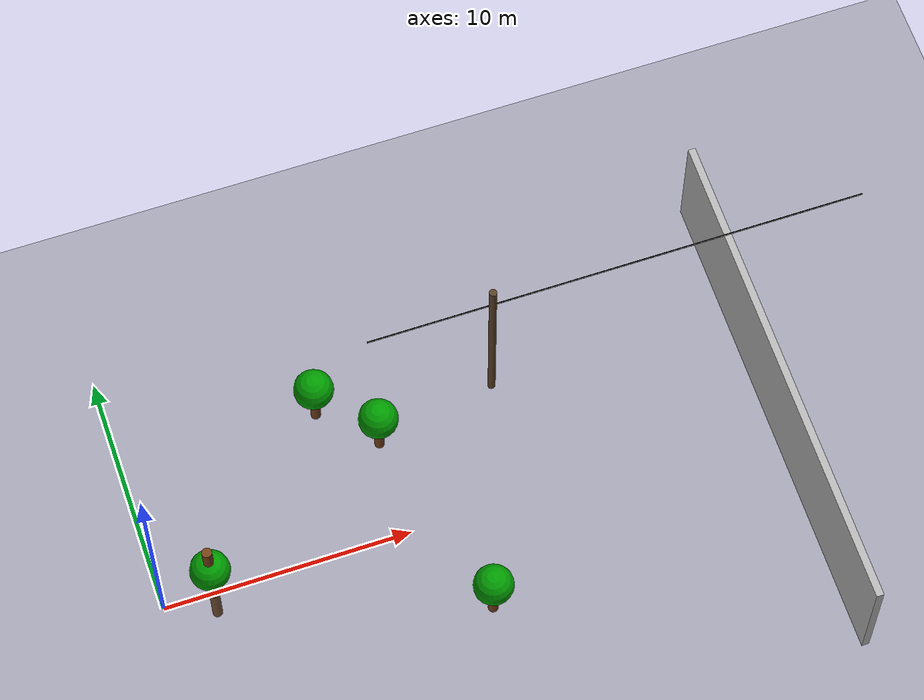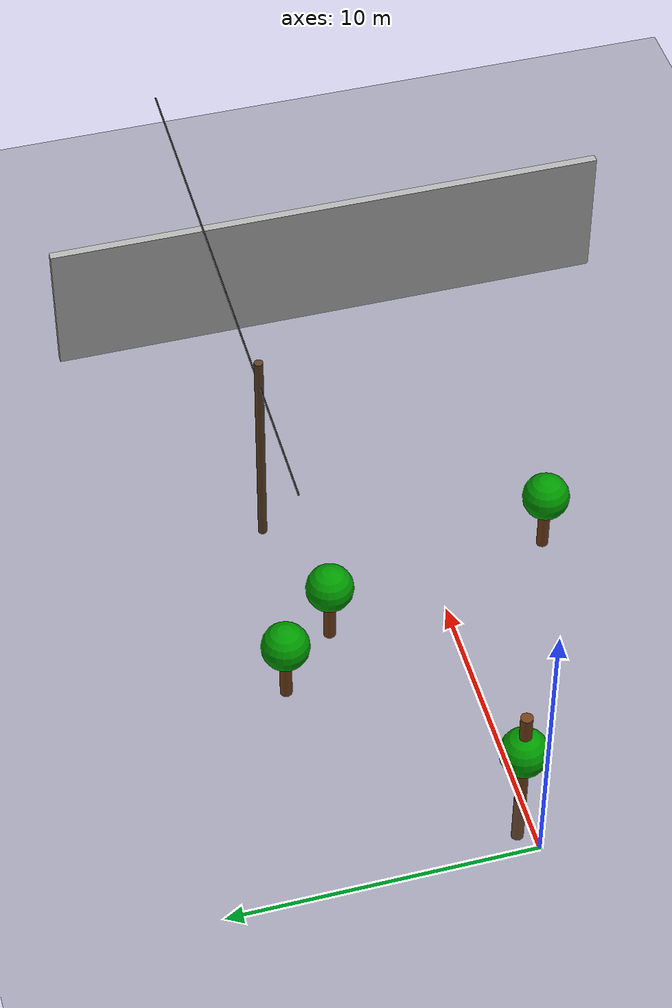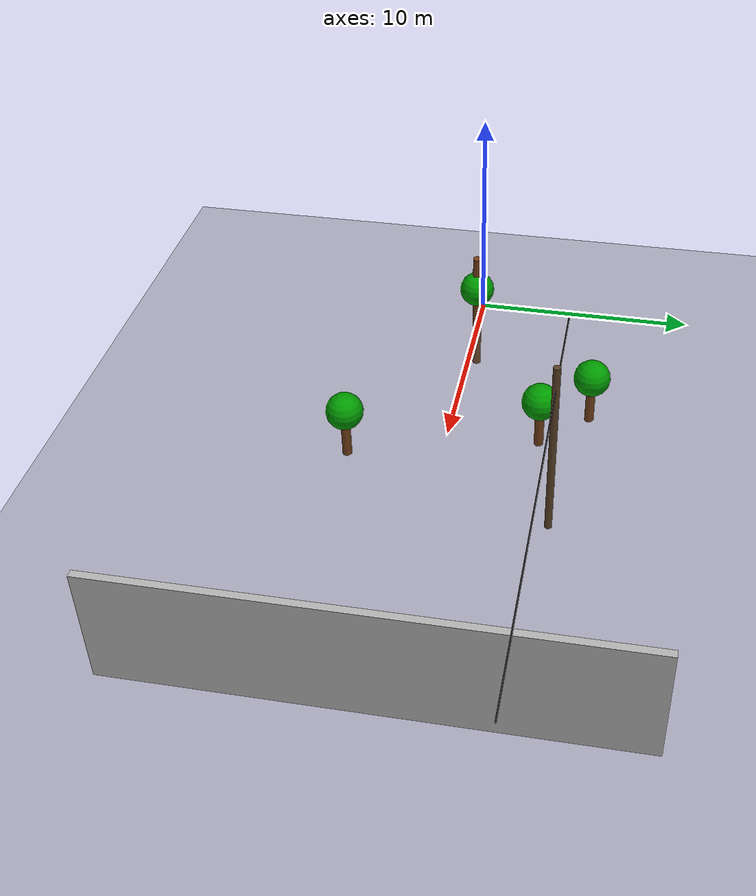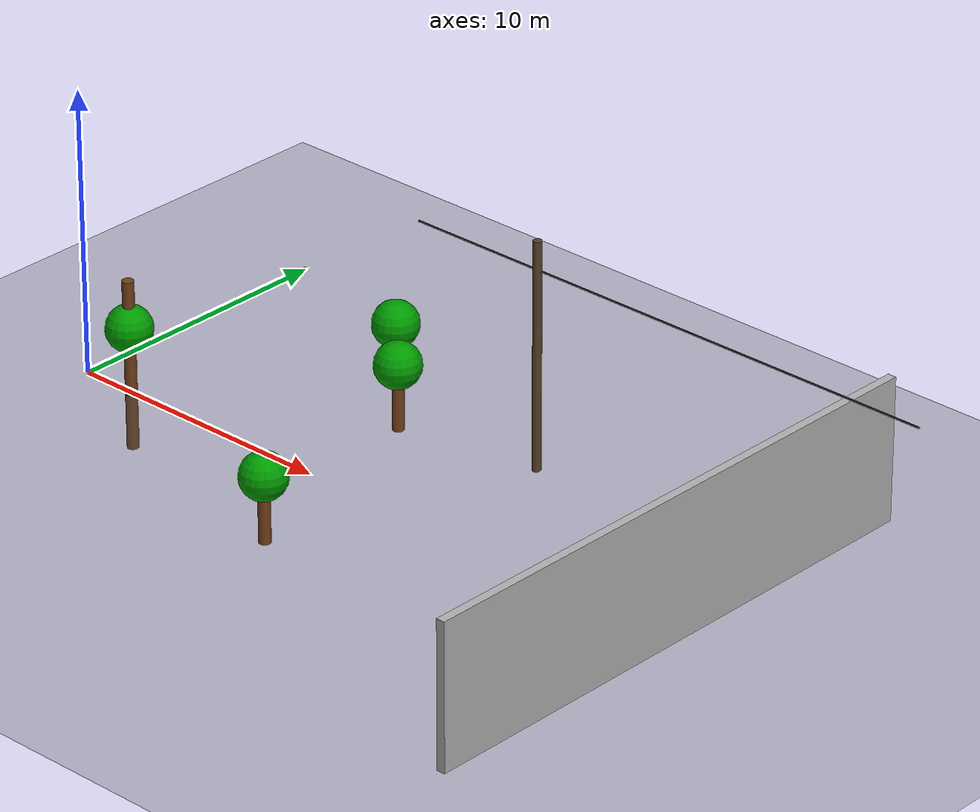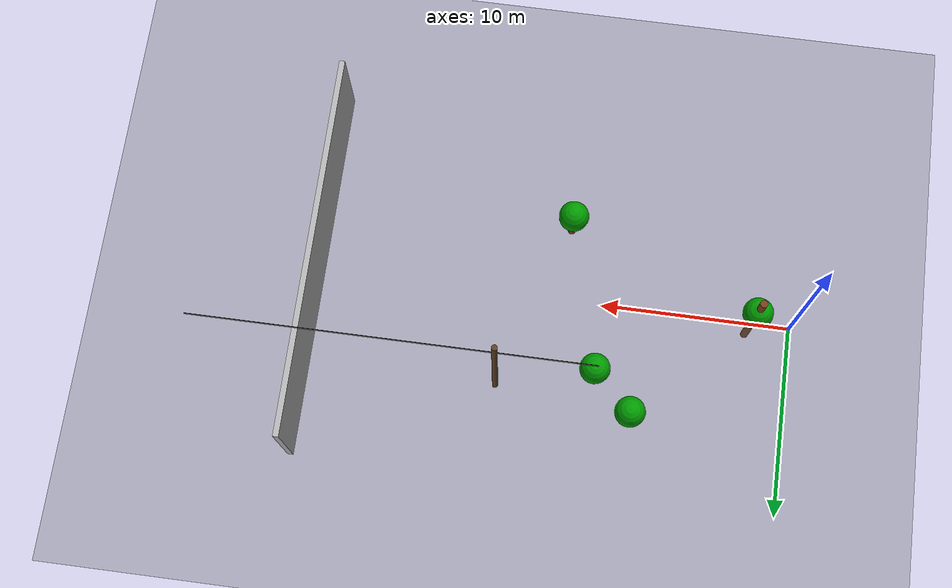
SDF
<?xml version="1.0" ?>
<sdf version="1.9">
  <world name="env_forest">
    <physics name="1ms" type="ignore">
      <max_step_size>0.001</max_step_size>
      <real_time_factor>1.0</real_time_factor>
    </physics>

    <plugin filename="gz-sim-physics-system"
      name="gz::sim::systems::Physics">
    </plugin>
    <plugin
      filename="gz-sim-sensors-system"
      name="gz::sim::systems::Sensors">
      <render_engine>ogre2</render_engine>
    </plugin>
    <plugin filename="gz-sim-user-commands-system"
      name="gz::sim::systems::UserCommands">
    </plugin>
    <plugin filename="gz-sim-scene-broadcaster-system"
      name="gz::sim::systems::SceneBroadcaster">
    </plugin>
    <plugin filename="gz-sim-imu-system"
      name="gz::sim::systems::Imu">
    </plugin>
    <plugin filename="gz-sim-navsat-system"
      name="gz::sim::systems::NavSat">
    </plugin>

    <scene>
      <ambient>1.0 1.0 1.0</ambient>
      <background>0.8 0.8 0.8</background>
      <sky></sky>
    </scene>

    <spherical_coordinates>
      <latitude_deg>-35.363262</latitude_deg>
      <longitude_deg>149.165237</longitude_deg>
      <elevation>584</elevation>
      <heading_deg>0</heading_deg>
      <surface_model>EARTH_WGS84</surface_model>
    </spherical_coordinates>

    <light type="directional" name="sun">
      <cast_shadows>true</cast_shadows>
      <pose>0 0 10 0 0 0</pose>
      <diffuse>0.8 0.8 0.8 1</diffuse>
      <specular>0.8 0.8 0.8 1</specular>
      <attenuation>
        <range>1000</range>
        <constant>0.9</constant>
        <linear>0.01</linear>
        <quadratic>0.001</quadratic>
      </attenuation>
      <direction>-0.5 0.1 -0.9</direction>
    </light>

    <model name="ground_plane">
      <static>true</static>
      <link name="link">
        <collision name="collision">
          <geometry>
            <plane>
              <normal>0 0 1</normal>
              <size>100 100</size>
            </plane>
          </geometry>
        </collision>
        <visual name="visual">
          <geometry>
            <plane>
              <normal>0 0 1</normal>
              <size>100 100</size>
            </plane>
          </geometry>
          <material>
            <ambient>0.3 0.3 0.3 1</ambient>
            <diffuse>0.3 0.3 0.3 1</diffuse>
          </material>
        </visual>
      </link>
    </model>

    <model name="axes">
      <static>1</static>
      <link name="link">
        <visual name="r">
          <cast_shadows>0</cast_shadows>
          <pose>5 0 0.1 0 0 0</pose>
          <geometry>
            <box>
              <size>10 0.01 0.01</size>
            </box>
          </geometry>
          <material>
            <ambient>1 0 0 0.8</ambient>
            <diffuse>1 0 0 0.8</diffuse>
            <emissive>1 0 0 0.8</emissive>
            <specular>0.5 0.5 0.5 0.8</specular>
          </material>
        </visual>
        <visual name="g">
          <cast_shadows>0</cast_shadows>
          <pose>0 5 0.1 0 0 0</pose>
          <geometry>
            <box>
              <size>0.01 10 0.01</size>
            </box>
          </geometry>
          <material>
            <ambient>0 1 0 0.8</ambient>
            <diffuse>0 1 0 0.8</diffuse>
            <emissive>0 1 0 0.8</emissive>
            <specular>0.5 0.5 0.5 0.8</specular>
          </material>
        </visual>
        <visual name="b">
          <cast_shadows>0</cast_shadows>
          <pose>0 0 5.1 0 0 0</pose>
          <geometry>
            <box>
              <size>0.01 0.01 10</size>
            </box>
          </geometry>
          <material>
            <ambient>0 0 1 0.8</ambient>
            <diffuse>0 0 1 0.8</diffuse>
            <emissive>0 0 1 0.8</emissive>
            <specular>0.5 0.5 0.5 0.8</specular>
          </material>
        </visual>
        <sensor name="navsat_sensor" type="navsat">
          <always_on>1</always_on>
          <update_rate>1</update_rate>
        </sensor>
      </link>
    </model>

    <model name="pole1">
      <static>true</static>
      <pose>15 5 0 0 0 0</pose>

      <link name="link">
        <collision name="collision">
          <geometry>
            <cylinder>
              <radius>0.15</radius>
              <length>8</length>
            </cylinder>
          </geometry>
          <pose>0 0 4 0 0 0</pose>
        </collision>

        <visual name="visual">
          <geometry>
            <cylinder>
              <radius>0.15</radius>
              <length>8</length>
            </cylinder>
          </geometry>
          <pose>0 0 4 0 0 0</pose>
          <material>
            <ambient>0.35 0.25 0.15 1</ambient>
            <diffuse>0.35 0.25 0.15 1</diffuse>
          </material>
        </visual>
      </link>
    </model>
    <model name="wire1">
      <static>true</static>
      <pose>20 5 7 0 1.57 0</pose>

      <link name="link">

        <collision name="collision">
          <geometry>
            <cylinder>
              <radius>0.03</radius>
              <length>20</length>
            </cylinder>
          </geometry>
        </collision>

        <visual name="visual">
          <geometry>
            <cylinder>
              <radius>0.03</radius>
              <length>20</length>
            </cylinder>
          </geometry>

          <material>
            <ambient>0.1 0.1 0.1 1</ambient>
            <diffuse>0.1 0.1 0.1 1</diffuse>
          </material>

        </visual>

      </link>
    </model>
    <model name="wall1">
      <static>true</static>

      <pose>25 0 2.5 0 0 0</pose>

      <link name="link">

        <collision name="collision">
          <geometry>
            <box>
              <size>0.3 20 5</size>
            </box>
          </geometry>
        </collision>

        <visual name="visual">
          <geometry>
            <box>
              <size>0.3 20 5</size>
            </box>
          </geometry>

          <material>
            <ambient>0.7 0.7 0.7 1</ambient>
            <diffuse>0.7 0.7 0.7 1</diffuse>
          </material>

        </visual>

      </link>
    </model>
    <model name="tree1">
      <static>true</static>
      <pose>2 0 0 0 0 0</pose>

      <link name="trunk">
        <collision name="collision">
          <geometry>
            <cylinder>
              <radius>0.2</radius>
              <length>6</length>
            </cylinder>
          </geometry>
          <pose>0 0 1 0 0 0</pose>
        </collision>

        <visual name="trunk_visual">
          <geometry>
            <cylinder>
              <radius>0.2</radius>
              <length>6</length>
            </cylinder>
          </geometry>
          <pose>0 0 1 0 0 0</pose>
          <material>
            <ambient>0.45 0.25 0.1 1</ambient>
            <diffuse>0.45 0.25 0.1 1</diffuse>
          </material>
        </visual>

        <visual name="leaves">
          <geometry>
            <sphere>
              <radius>0.8</radius>
            </sphere>
          </geometry>
          <pose>0 0 2.3 0 0 0</pose>
          <material>
            <ambient>0 0.6 0 1</ambient>
            <diffuse>0 0.6 0 1</diffuse>
          </material>
        </visual>
      </link>
    </model>
    <model name="tree2">
      <static>true</static>
      <pose>8 6 0 0 0 0</pose>

      <link name="trunk">
        <collision name="collision">
          <geometry>
            <cylinder>
              <radius>0.2</radius>
              <length>2</length>
            </cylinder>
          </geometry>
          <pose>0 0 1 0 0 0</pose>
        </collision>

        <visual name="trunk_visual">
          <geometry>
            <cylinder>
              <radius>0.2</radius>
              <length>2</length>
            </cylinder>
          </geometry>
          <pose>0 0 1 0 0 0</pose>
          <material>
            <ambient>0.45 0.25 0.1 1</ambient>
            <diffuse>0.45 0.25 0.1 1</diffuse>
          </material>
        </visual>

        <visual name="leaves">
          <geometry>
            <sphere>
              <radius>0.8</radius>
            </sphere>
          </geometry>
          <pose>0 0 2.3 0 0 0</pose>
          <material>
            <ambient>0 0.6 0 1</ambient>
            <diffuse>0 0.6 0 1</diffuse>
          </material>
        </visual>
      </link>
    </model>
    <model name="tree3">
      <static>true</static>
      <pose>12 -4 0 0 0 0</pose>

      <link name="trunk">
        <collision name="collision">
          <geometry>
            <cylinder>
              <radius>0.2</radius>
              <length>2</length>
            </cylinder>
          </geometry>
          <pose>0 0 1 0 0 0</pose>
        </collision>

        <visual name="trunk_visual">
          <geometry>
            <cylinder>
              <radius>0.2</radius>
              <length>2</length>
            </cylinder>
          </geometry>
          <pose>0 0 1 0 0 0</pose>
          <material>
            <ambient>0.45 0.25 0.1 1</ambient>
            <diffuse>0.45 0.25 0.1 1</diffuse>
          </material>
        </visual>

        <visual name="leaves">
          <geometry>
            <sphere>
              <radius>0.8</radius>
            </sphere>
          </geometry>
          <pose>0 0 2.3 0 0 0</pose>
          <material>
            <ambient>0 0.6 0 1</ambient>
            <diffuse>0 0.6 0 1</diffuse>
          </material>
        </visual>
      </link>
    </model>
    <model name="tree4">
      <static>true</static>
      <pose>10 4 0 0 0 0</pose>

      <link name="trunk">
        <collision name="collision">
          <geometry>
            <cylinder>
              <radius>0.2</radius>
              <length>2</length>
            </cylinder>
          </geometry>
          <pose>0 0 1 0 0 0</pose>
        </collision>

        <visual name="trunk_visual">
          <geometry>
            <cylinder>
              <radius>0.2</radius>
              <length>2</length>
            </cylinder>
          </geometry>
          <pose>0 0 1 0 0 0</pose>
          <material>
            <ambient>0.45 0.25 0.1 1</ambient>
            <diffuse>0.45 0.25 0.1 1</diffuse>
          </material>
        </visual>

        <visual name="leaves">
          <geometry>
            <sphere>
              <radius>0.8</radius>
            </sphere>
          </geometry>
          <pose>0 0 2.3 0 0 0</pose>
          <material>
            <ambient>0 0.6 0 1</ambient>
            <diffuse>0 0.6 0 1</diffuse>
          </material>
        </visual>
      </link>
    </model>
  </world>
</sdf>
